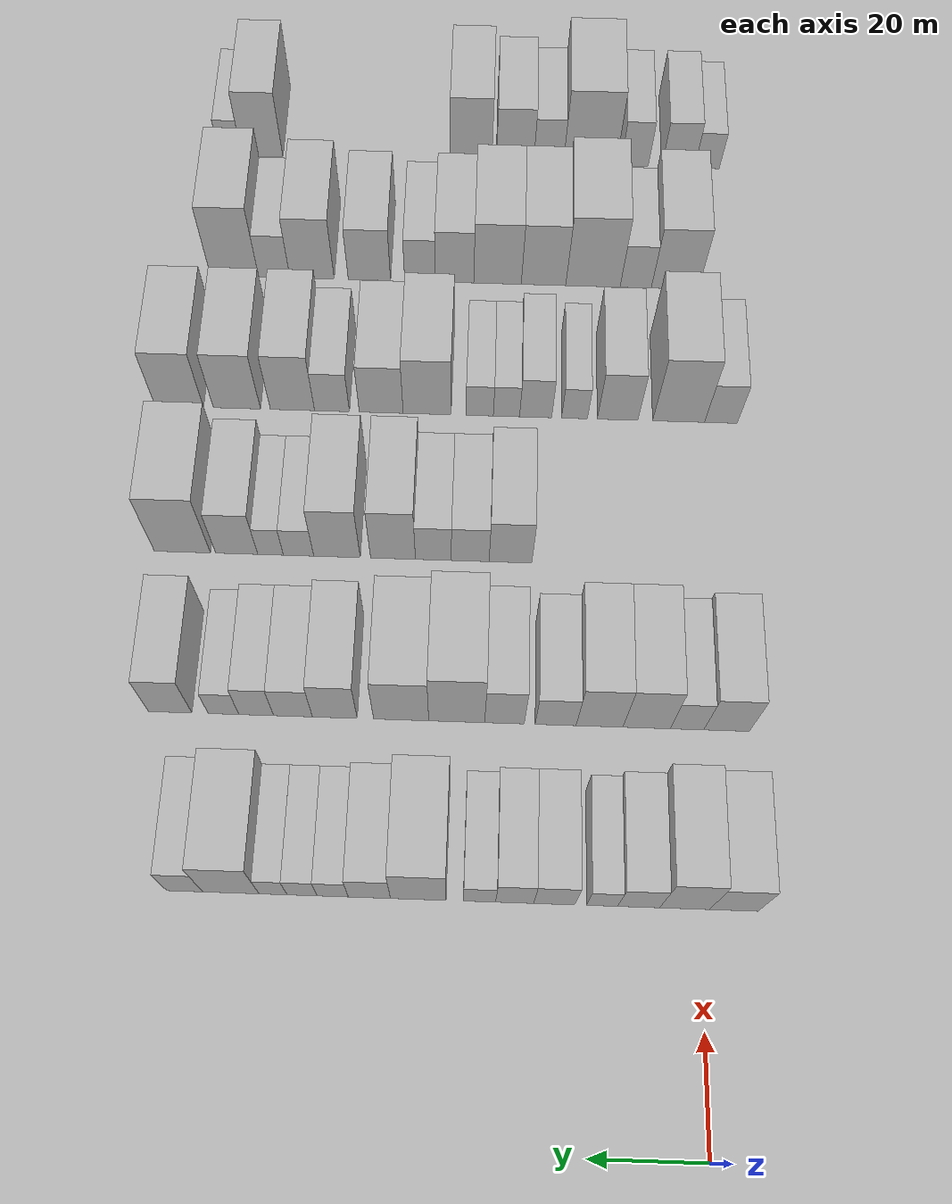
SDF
<sdf version="1.6">
 <world name="default">
  <include><name>ground_plane_1</name><uri>model://HANNAS_ground_plane</uri></include>
  <include>
   <name>ground_plane_2</name>
   <uri>model://HANNAS_ground_plane</uri>
   <pose>100 0 0  0 0 0</pose>
  </include>
  <model name="building_60">
   <static>1</static>
   <pose>50.0000 -5.7526 0 0.000000 0.000000 0.000000</pose>
   <link name="link">
    <pose>0 0 9.00 0 0 0</pose>
    <collision name="collision"><geometry><box><size>20.0000 8.3915 18.0000</size></box></geometry></collision>
    <visual name="visual">
     <cast_shadows>0</cast_shadows>
     <geometry><box><size>20.0000 8.3915 18.0000</size></box></geometry>
     <material>
      <script>
       <uri>model://HANNAS_wall/materials/scripts</uri>
       <uri>model://HANNAS_wall/materials/textures</uri>
       <name>vrc/HANNAS_wall</name>
      </script>
     </material>
    </visual>
   </link>
  </model>
  <model name="building_61">
   <static>1</static>
   <pose>50.0000 2.7768 0 0.000000 0.000000 0.000000</pose>
   <link name="link">
    <pose>0 0 10.50 0 0 0</pose>
    <collision name="collision"><geometry><box><size>20.0000 8.6674 21.0000</size></box></geometry></collision>
    <visual name="visual">
     <cast_shadows>0</cast_shadows>
     <geometry><box><size>20.0000 8.6674 21.0000</size></box></geometry>
     <material>
      <script>
       <uri>model://HANNAS_wall/materials/scripts</uri>
       <uri>model://HANNAS_wall/materials/textures</uri>
       <name>vrc/HANNAS_wall</name>
      </script>
     </material>
    </visual>
   </link>
  </model>
  <model name="building_62">
   <static>1</static>
   <pose>50.0000 10.7476 0 0.000000 0.000000 0.000000</pose>
   <link name="link">
    <pose>0 0 7.50 0 0 0</pose>
    <collision name="collision"><geometry><box><size>20.0000 7.2742 15.0000</size></box></geometry></collision>
    <visual name="visual">
     <cast_shadows>0</cast_shadows>
     <geometry><box><size>20.0000 7.2742 15.0000</size></box></geometry>
     <material>
      <script>
       <uri>model://HANNAS_wall/materials/scripts</uri>
       <uri>model://HANNAS_wall/materials/textures</uri>
       <name>vrc/HANNAS_wall</name>
      </script>
     </material>
    </visual>
   </link>
  </model>
  <model name="building_63">
   <static>1</static>
   <pose>50.0000 17.0722 0 0.000000 0.000000 0.000000</pose>
   <link name="link">
    <pose>0 0 6.00 0 0 0</pose>
    <collision name="collision"><geometry><box><size>20.0000 5.3750 12.0000</size></box></geometry></collision>
    <visual name="visual">
     <cast_shadows>0</cast_shadows>
     <geometry><box><size>20.0000 5.3750 12.0000</size></box></geometry>
     <material>
      <script>
       <uri>model://HANNAS_wall/materials/scripts</uri>
       <uri>model://HANNAS_wall/materials/textures</uri>
       <name>vrc/HANNAS_wall</name>
      </script>
     </material>
    </visual>
   </link>
  </model>
  <model name="building_64">
   <static>1</static>
   <pose>50.0000 25.3517 0 0.000000 0.000000 0.000000</pose>
   <link name="link">
    <pose>0 0 7.50 0 0 0</pose>
    <collision name="collision"><geometry><box><size>20.0000 7.1840 15.0000</size></box></geometry></collision>
    <visual name="visual">
     <cast_shadows>0</cast_shadows>
     <geometry><box><size>20.0000 7.1840 15.0000</size></box></geometry>
     <material>
      <script>
       <uri>model://HANNAS_wall/materials/scripts</uri>
       <uri>model://HANNAS_wall/materials/textures</uri>
       <name>vrc/HANNAS_wall</name>
      </script>
     </material>
    </visual>
   </link>
  </model>
  <model name="building_65">
   <static>1</static>
   <pose>50.0000 32.2390 0 0.000000 0.000000 0.000000</pose>
   <link name="link">
    <pose>0 0 7.50 0 0 0</pose>
    <collision name="collision"><geometry><box><size>20.0000 6.5907 15.0000</size></box></geometry></collision>
    <visual name="visual">
     <cast_shadows>0</cast_shadows>
     <geometry><box><size>20.0000 6.5907 15.0000</size></box></geometry>
     <material>
      <script>
       <uri>model://HANNAS_wall/materials/scripts</uri>
       <uri>model://HANNAS_wall/materials/textures</uri>
       <name>vrc/HANNAS_wall</name>
      </script>
     </material>
    </visual>
   </link>
  </model>
  <model name="building_66">
   <static>1</static>
   <pose>50.0000 38.3347 0 0.000000 0.000000 0.000000</pose>
   <link name="link">
    <pose>0 0 6.00 0 0 0</pose>
    <collision name="collision"><geometry><box><size>20.0000 5.6006 12.0000</size></box></geometry></collision>
    <visual name="visual">
     <cast_shadows>0</cast_shadows>
     <geometry><box><size>20.0000 5.6006 12.0000</size></box></geometry>
     <material>
      <script>
       <uri>model://HANNAS_wall/materials/scripts</uri>
       <uri>model://HANNAS_wall/materials/textures</uri>
       <name>vrc/HANNAS_wall</name>
      </script>
     </material>
    </visual>
   </link>
  </model>
  <model name="building_67">
   <static>1</static>
   <pose>50.0000 48.9558 0 0.000000 0.000000 0.000000</pose>
   <link name="link">
    <pose>0 0 10.50 0 0 0</pose>
    <collision name="collision"><geometry><box><size>20.0000 9.6417 21.0000</size></box></geometry></collision>
    <visual name="visual">
     <cast_shadows>0</cast_shadows>
     <geometry><box><size>20.0000 9.6417 21.0000</size></box></geometry>
     <material>
      <script>
       <uri>model://HANNAS_wall/materials/scripts</uri>
       <uri>model://HANNAS_wall/materials/textures</uri>
       <name>vrc/HANNAS_wall</name>
      </script>
     </material>
    </visual>
   </link>
  </model>
  <model name="building_68">
   <static>1</static>
   <pose>50.0000 57.4464 0 0.000000 0.000000 0.000000</pose>
   <link name="link">
    <pose>0 0 7.50 0 0 0</pose>
    <collision name="collision"><geometry><box><size>20.0000 7.3395 15.0000</size></box></geometry></collision>
    <visual name="visual">
     <cast_shadows>0</cast_shadows>
     <geometry><box><size>20.0000 7.3395 15.0000</size></box></geometry>
     <material>
      <script>
       <uri>model://HANNAS_wall/materials/scripts</uri>
       <uri>model://HANNAS_wall/materials/textures</uri>
       <name>vrc/HANNAS_wall</name>
      </script>
     </material>
    </visual>
   </link>
  </model>
  <model name="building_69">
   <static>1</static>
   <pose>50.0000 63.8387 0 0.000000 0.000000 0.000000</pose>
   <link name="link">
    <pose>0 0 6.00 0 0 0</pose>
    <collision name="collision"><geometry><box><size>20.0000 5.4452 12.0000</size></box></geometry></collision>
    <visual name="visual">
     <cast_shadows>0</cast_shadows>
     <geometry><box><size>20.0000 5.4452 12.0000</size></box></geometry>
     <material>
      <script>
       <uri>model://HANNAS_wall/materials/scripts</uri>
       <uri>model://HANNAS_wall/materials/textures</uri>
       <name>vrc/HANNAS_wall</name>
      </script>
     </material>
    </visual>
   </link>
  </model>
  <model name="building_70">
   <static>1</static>
   <pose>50.0000 69.1632 0 0.000000 0.000000 0.000000</pose>
   <link name="link">
    <pose>0 0 6.00 0 0 0</pose>
    <collision name="collision"><geometry><box><size>20.0000 5.2038 12.0000</size></box></geometry></collision>
    <visual name="visual">
     <cast_shadows>0</cast_shadows>
     <geometry><box><size>20.0000 5.2038 12.0000</size></box></geometry>
     <material>
      <script>
       <uri>model://HANNAS_wall/materials/scripts</uri>
       <uri>model://HANNAS_wall/materials/textures</uri>
       <name>vrc/HANNAS_wall</name>
      </script>
     </material>
    </visual>
   </link>
  </model>
  <model name="building_71">
   <static>1</static>
   <pose>50.0000 74.2034 0 0.000000 0.000000 0.000000</pose>
   <link name="link">
    <pose>0 0 6.00 0 0 0</pose>
    <collision name="collision"><geometry><box><size>20.0000 4.8765 12.0000</size></box></geometry></collision>
    <visual name="visual">
     <cast_shadows>0</cast_shadows>
     <geometry><box><size>20.0000 4.8765 12.0000</size></box></geometry>
     <material>
      <script>
       <uri>model://HANNAS_wall/materials/scripts</uri>
       <uri>model://HANNAS_wall/materials/textures</uri>
       <name>vrc/HANNAS_wall</name>
      </script>
     </material>
    </visual>
   </link>
  </model>
  <model name="building_72">
   <static>1</static>
   <pose>50.0000 81.5689 0 0.000000 0.000000 0.000000</pose>
   <link name="link">
    <pose>0 0 10.50 0 0 0</pose>
    <collision name="collision"><geometry><box><size>20.0000 9.8546 21.0000</size></box></geometry></collision>
    <visual name="visual">
     <cast_shadows>0</cast_shadows>
     <geometry><box><size>20.0000 9.8546 21.0000</size></box></geometry>
     <material>
      <script>
       <uri>model://HANNAS_wall/materials/scripts</uri>
       <uri>model://HANNAS_wall/materials/textures</uri>
       <name>vrc/HANNAS_wall</name>
      </script>
     </material>
    </visual>
   </link>
  </model>
  <model name="building_73">
   <static>1</static>
   <pose>50.0000 89.6382 0 0.000000 0.000000 0.000000</pose>
   <link name="link">
    <pose>0 0 7.50 0 0 0</pose>
    <collision name="collision"><geometry><box><size>20.0000 6.2839 15.0000</size></box></geometry></collision>
    <visual name="visual">
     <cast_shadows>0</cast_shadows>
     <geometry><box><size>20.0000 6.2839 15.0000</size></box></geometry>
     <material>
      <script>
       <uri>model://HANNAS_wall/materials/scripts</uri>
       <uri>model://HANNAS_wall/materials/textures</uri>
       <name>vrc/HANNAS_wall</name>
      </script>
     </material>
    </visual>
   </link>
  </model>
  <model name="building_179">
   <static>1</static>
   <pose>82.0000 -6.0456 0 0.000000 0.000000 0.000000</pose>
   <link name="link">
    <pose>0 0 9.00 0 0 0</pose>
    <collision name="collision"><geometry><box><size>20.0000 8.3194 18.0000</size></box></geometry></collision>
    <visual name="visual">
     <cast_shadows>0</cast_shadows>
     <geometry><box><size>20.0000 8.3194 18.0000</size></box></geometry>
     <material>
      <script>
       <uri>model://HANNAS_wall/materials/scripts</uri>
       <uri>model://HANNAS_wall/materials/textures</uri>
       <name>vrc/HANNAS_wall</name>
      </script>
     </material>
    </visual>
   </link>
  </model>
  <model name="building_180">
   <static>1</static>
   <pose>82.0000 1.1672 0 0.000000 0.000000 0.000000</pose>
   <link name="link">
    <pose>0 0 7.50 0 0 0</pose>
    <collision name="collision"><geometry><box><size>20.0000 6.1062 15.0000</size></box></geometry></collision>
    <visual name="visual">
     <cast_shadows>0</cast_shadows>
     <geometry><box><size>20.0000 6.1062 15.0000</size></box></geometry>
     <material>
      <script>
       <uri>model://HANNAS_wall/materials/scripts</uri>
       <uri>model://HANNAS_wall/materials/textures</uri>
       <name>vrc/HANNAS_wall</name>
      </script>
     </material>
    </visual>
   </link>
  </model>
  <model name="building_181">
   <static>1</static>
   <pose>82.0000 8.5556 0 0.000000 0.000000 0.000000</pose>
   <link name="link">
    <pose>0 0 10.50 0 0 0</pose>
    <collision name="collision"><geometry><box><size>20.0000 8.6706 21.0000</size></box></geometry></collision>
    <visual name="visual">
     <cast_shadows>0</cast_shadows>
     <geometry><box><size>20.0000 8.6706 21.0000</size></box></geometry>
     <material>
      <script>
       <uri>model://HANNAS_wall/materials/scripts</uri>
       <uri>model://HANNAS_wall/materials/textures</uri>
       <name>vrc/HANNAS_wall</name>
      </script>
     </material>
    </visual>
   </link>
  </model>
  <model name="building_182">
   <static>1</static>
   <pose>82.0000 17.1763 0 0.000000 0.000000 0.000000</pose>
   <link name="link">
    <pose>0 0 10.50 0 0 0</pose>
    <collision name="collision"><geometry><box><size>20.0000 8.5709 21.0000</size></box></geometry></collision>
    <visual name="visual">
     <cast_shadows>0</cast_shadows>
     <geometry><box><size>20.0000 8.5709 21.0000</size></box></geometry>
     <material>
      <script>
       <uri>model://HANNAS_wall/materials/scripts</uri>
       <uri>model://HANNAS_wall/materials/textures</uri>
       <name>vrc/HANNAS_wall</name>
      </script>
     </material>
    </visual>
   </link>
  </model>
  <model name="building_183">
   <static>1</static>
   <pose>82.0000 25.2046 0 0.000000 0.000000 0.000000</pose>
   <link name="link">
    <pose>0 0 7.50 0 0 0</pose>
    <collision name="collision"><geometry><box><size>20.0000 7.4856 15.0000</size></box></geometry></collision>
    <visual name="visual">
     <cast_shadows>0</cast_shadows>
     <geometry><box><size>20.0000 7.4856 15.0000</size></box></geometry>
     <material>
      <script>
       <uri>model://HANNAS_wall/materials/scripts</uri>
       <uri>model://HANNAS_wall/materials/textures</uri>
       <name>vrc/HANNAS_wall</name>
      </script>
     </material>
    </visual>
   </link>
  </model>
  <model name="building_184">
   <static>1</static>
   <pose>82.0000 34.5823 0 0.000000 0.000000 0.000000</pose>
   <link name="link">
    <pose>0 0 9.00 0 0 0</pose>
    <collision name="collision"><geometry><box><size>20.0000 7.2697 18.0000</size></box></geometry></collision>
    <visual name="visual">
     <cast_shadows>0</cast_shadows>
     <geometry><box><size>20.0000 7.2697 18.0000</size></box></geometry>
     <material>
      <script>
       <uri>model://HANNAS_wall/materials/scripts</uri>
       <uri>model://HANNAS_wall/materials/textures</uri>
       <name>vrc/HANNAS_wall</name>
      </script>
     </material>
    </visual>
   </link>
  </model>
  <model name="building_185">
   <static>1</static>
   <pose>82.0000 43.3344 0 0.000000 0.000000 0.000000</pose>
   <link name="link">
    <pose>0 0 12.00 0 0 0</pose>
    <collision name="collision"><geometry><box><size>20.0000 10.2344 24.0000</size></box></geometry></collision>
    <visual name="visual">
     <cast_shadows>0</cast_shadows>
     <geometry><box><size>20.0000 10.2344 24.0000</size></box></geometry>
     <material>
      <script>
       <uri>model://HANNAS_wall/materials/scripts</uri>
       <uri>model://HANNAS_wall/materials/textures</uri>
       <name>vrc/HANNAS_wall</name>
      </script>
     </material>
    </visual>
   </link>
  </model>
  <model name="building_186">
   <static>1</static>
   <pose>82.0000 53.5093 0 0.000000 0.000000 0.000000</pose>
   <link name="link">
    <pose>0 0 10.50 0 0 0</pose>
    <collision name="collision"><geometry><box><size>20.0000 10.1156 21.0000</size></box></geometry></collision>
    <visual name="visual">
     <cast_shadows>0</cast_shadows>
     <geometry><box><size>20.0000 10.1156 21.0000</size></box></geometry>
     <material>
      <script>
       <uri>model://HANNAS_wall/materials/scripts</uri>
       <uri>model://HANNAS_wall/materials/textures</uri>
       <name>vrc/HANNAS_wall</name>
      </script>
     </material>
    </visual>
   </link>
  </model>
  <model name="building_187">
   <static>1</static>
   <pose>82.0000 65.6841 0 0.000000 0.000000 0.000000</pose>
   <link name="link">
    <pose>0 0 9.00 0 0 0</pose>
    <collision name="collision"><geometry><box><size>20.0000 8.2340 18.0000</size></box></geometry></collision>
    <visual name="visual">
     <cast_shadows>0</cast_shadows>
     <geometry><box><size>20.0000 8.2340 18.0000</size></box></geometry>
     <material>
      <script>
       <uri>model://HANNAS_wall/materials/scripts</uri>
       <uri>model://HANNAS_wall/materials/textures</uri>
       <name>vrc/HANNAS_wall</name>
      </script>
     </material>
    </visual>
   </link>
  </model>
  <model name="building_188">
   <static>1</static>
   <pose>82.0000 73.3707 0 0.000000 0.000000 0.000000</pose>
   <link name="link">
    <pose>0 0 7.50 0 0 0</pose>
    <collision name="collision"><geometry><box><size>20.0000 7.1391 15.0000</size></box></geometry></collision>
    <visual name="visual">
     <cast_shadows>0</cast_shadows>
     <geometry><box><size>20.0000 7.1391 15.0000</size></box></geometry>
     <material>
      <script>
       <uri>model://HANNAS_wall/materials/scripts</uri>
       <uri>model://HANNAS_wall/materials/textures</uri>
       <name>vrc/HANNAS_wall</name>
      </script>
     </material>
    </visual>
   </link>
  </model>
  <model name="building_189">
   <static>1</static>
   <pose>82.0000 80.1322 0 0.000000 0.000000 0.000000</pose>
   <link name="link">
    <pose>0 0 7.50 0 0 0</pose>
    <collision name="collision"><geometry><box><size>20.0000 6.3840 15.0000</size></box></geometry></collision>
    <visual name="visual">
     <cast_shadows>0</cast_shadows>
     <geometry><box><size>20.0000 6.3840 15.0000</size></box></geometry>
     <material>
      <script>
       <uri>model://HANNAS_wall/materials/scripts</uri>
       <uri>model://HANNAS_wall/materials/textures</uri>
       <name>vrc/HANNAS_wall</name>
      </script>
     </material>
    </visual>
   </link>
  </model>
  <model name="building_190">
   <static>1</static>
   <pose>82.0000 86.1538 0 0.000000 0.000000 0.000000</pose>
   <link name="link">
    <pose>0 0 6.00 0 0 0</pose>
    <collision name="collision"><geometry><box><size>20.0000 5.6592 12.0000</size></box></geometry></collision>
    <visual name="visual">
     <cast_shadows>0</cast_shadows>
     <geometry><box><size>20.0000 5.6592 12.0000</size></box></geometry>
     <material>
      <script>
       <uri>model://HANNAS_wall/materials/scripts</uri>
       <uri>model://HANNAS_wall/materials/textures</uri>
       <name>vrc/HANNAS_wall</name>
      </script>
     </material>
    </visual>
   </link>
  </model>
  <model name="building_191">
   <static>1</static>
   <pose>82.0000 95.9830 0 0.000000 0.000000 0.000000</pose>
   <link name="link">
    <pose>0 0 9.00 0 0 0</pose>
    <collision name="collision"><geometry><box><size>20.0000 7.9992 18.0000</size></box></geometry></collision>
    <visual name="visual">
     <cast_shadows>0</cast_shadows>
     <geometry><box><size>20.0000 7.9992 18.0000</size></box></geometry>
     <material>
      <script>
       <uri>model://HANNAS_wall/materials/scripts</uri>
       <uri>model://HANNAS_wall/materials/textures</uri>
       <name>vrc/HANNAS_wall</name>
      </script>
     </material>
    </visual>
   </link>
  </model>
  <model name="building_294">
   <static>1</static>
   <pose>114.0000 34.0008 0 0.000000 0.000000 0.000000</pose>
   <link name="link">
    <pose>0 0 9.00 0 0 0</pose>
    <collision name="collision"><geometry><box><size>20.0000 8.2358 18.0000</size></box></geometry></collision>
    <visual name="visual">
     <cast_shadows>0</cast_shadows>
     <geometry><box><size>20.0000 8.2358 18.0000</size></box></geometry>
     <material>
      <script>
       <uri>model://HANNAS_wall/materials/scripts</uri>
       <uri>model://HANNAS_wall/materials/textures</uri>
       <name>vrc/HANNAS_wall</name>
      </script>
     </material>
    </visual>
   </link>
  </model>
  <model name="building_295">
   <static>1</static>
   <pose>114.0000 41.7479 0 0.000000 0.000000 0.000000</pose>
   <link name="link">
    <pose>0 0 7.50 0 0 0</pose>
    <collision name="collision"><geometry><box><size>20.0000 7.2583 15.0000</size></box></geometry></collision>
    <visual name="visual">
     <cast_shadows>0</cast_shadows>
     <geometry><box><size>20.0000 7.2583 15.0000</size></box></geometry>
     <material>
      <script>
       <uri>model://HANNAS_wall/materials/scripts</uri>
       <uri>model://HANNAS_wall/materials/textures</uri>
       <name>vrc/HANNAS_wall</name>
      </script>
     </material>
    </visual>
   </link>
  </model>
  <model name="building_296">
   <static>1</static>
   <pose>114.0000 48.8464 0 0.000000 0.000000 0.000000</pose>
   <link name="link">
    <pose>0 0 7.50 0 0 0</pose>
    <collision name="collision"><geometry><box><size>20.0000 6.9389 15.0000</size></box></geometry></collision>
    <visual name="visual">
     <cast_shadows>0</cast_shadows>
     <geometry><box><size>20.0000 6.9389 15.0000</size></box></geometry>
     <material>
      <script>
       <uri>model://HANNAS_wall/materials/scripts</uri>
       <uri>model://HANNAS_wall/materials/textures</uri>
       <name>vrc/HANNAS_wall</name>
      </script>
     </material>
    </visual>
   </link>
  </model>
  <model name="building_297">
   <static>1</static>
   <pose>114.0000 56.6478 0 0.000000 0.000000 0.000000</pose>
   <link name="link">
    <pose>0 0 10.50 0 0 0</pose>
    <collision name="collision"><geometry><box><size>20.0000 8.6639 21.0000</size></box></geometry></collision>
    <visual name="visual">
     <cast_shadows>0</cast_shadows>
     <geometry><box><size>20.0000 8.6639 21.0000</size></box></geometry>
     <material>
      <script>
       <uri>model://HANNAS_wall/materials/scripts</uri>
       <uri>model://HANNAS_wall/materials/textures</uri>
       <name>vrc/HANNAS_wall</name>
      </script>
     </material>
    </visual>
   </link>
  </model>
  <model name="building_298">
   <static>1</static>
   <pose>114.0000 67.4749 0 0.000000 0.000000 0.000000</pose>
   <link name="link">
    <pose>0 0 10.50 0 0 0</pose>
    <collision name="collision"><geometry><box><size>20.0000 8.9902 21.0000</size></box></geometry></collision>
    <visual name="visual">
     <cast_shadows>0</cast_shadows>
     <geometry><box><size>20.0000 8.9902 21.0000</size></box></geometry>
     <material>
      <script>
       <uri>model://HANNAS_wall/materials/scripts</uri>
       <uri>model://HANNAS_wall/materials/textures</uri>
       <name>vrc/HANNAS_wall</name>
      </script>
     </material>
    </visual>
   </link>
  </model>
  <model name="building_299">
   <static>1</static>
   <pose>114.0000 74.9051 0 0.000000 0.000000 0.000000</pose>
   <link name="link">
    <pose>0 0 6.00 0 0 0</pose>
    <collision name="collision"><geometry><box><size>20.0000 5.8703 12.0000</size></box></geometry></collision>
    <visual name="visual">
     <cast_shadows>0</cast_shadows>
     <geometry><box><size>20.0000 5.8703 12.0000</size></box></geometry>
     <material>
      <script>
       <uri>model://HANNAS_wall/materials/scripts</uri>
       <uri>model://HANNAS_wall/materials/textures</uri>
       <name>vrc/HANNAS_wall</name>
      </script>
     </material>
    </visual>
   </link>
  </model>
  <model name="building_300">
   <static>1</static>
   <pose>114.0000 80.3320 0 0.000000 0.000000 0.000000</pose>
   <link name="link">
    <pose>0 0 6.00 0 0 0</pose>
    <collision name="collision"><geometry><box><size>20.0000 4.9835 12.0000</size></box></geometry></collision>
    <visual name="visual">
     <cast_shadows>0</cast_shadows>
     <geometry><box><size>20.0000 4.9835 12.0000</size></box></geometry>
     <material>
      <script>
       <uri>model://HANNAS_wall/materials/scripts</uri>
       <uri>model://HANNAS_wall/materials/textures</uri>
       <name>vrc/HANNAS_wall</name>
      </script>
     </material>
    </visual>
   </link>
  </model>
  <model name="building_301">
   <static>1</static>
   <pose>114.0000 86.9029 0 0.000000 0.000000 0.000000</pose>
   <link name="link">
    <pose>0 0 9.00 0 0 0</pose>
    <collision name="collision"><geometry><box><size>20.0000 8.1582 18.0000</size></box></geometry></collision>
    <visual name="visual">
     <cast_shadows>0</cast_shadows>
     <geometry><box><size>20.0000 8.1582 18.0000</size></box></geometry>
     <material>
      <script>
       <uri>model://HANNAS_wall/materials/scripts</uri>
       <uri>model://HANNAS_wall/materials/textures</uri>
       <name>vrc/HANNAS_wall</name>
      </script>
     </material>
    </visual>
   </link>
  </model>
  <model name="building_302">
   <static>1</static>
   <pose>114.0000 97.4266 0 0.000000 0.000000 0.000000</pose>
   <link name="link">
    <pose>0 0 12.00 0 0 0</pose>
    <collision name="collision"><geometry><box><size>20.0000 10.8891 24.0000</size></box></geometry></collision>
    <visual name="visual">
     <cast_shadows>0</cast_shadows>
     <geometry><box><size>20.0000 10.8891 24.0000</size></box></geometry>
     <material>
      <script>
       <uri>model://HANNAS_wall/materials/scripts</uri>
       <uri>model://HANNAS_wall/materials/textures</uri>
       <name>vrc/HANNAS_wall</name>
      </script>
     </material>
    </visual>
   </link>
  </model>
  <model name="building_398">
   <static>1</static>
   <pose>146.0000 -8.0152 0 0.000000 0.000000 0.000000</pose>
   <link name="link">
    <pose>0 0 7.50 0 0 0</pose>
    <collision name="collision"><geometry><box><size>20.0000 6.5896 15.0000</size></box></geometry></collision>
    <visual name="visual">
     <cast_shadows>0</cast_shadows>
     <geometry><box><size>20.0000 6.5896 15.0000</size></box></geometry>
     <material>
      <script>
       <uri>model://HANNAS_wall/materials/scripts</uri>
       <uri>model://HANNAS_wall/materials/textures</uri>
       <name>vrc/HANNAS_wall</name>
      </script>
     </material>
    </visual>
   </link>
  </model>
  <model name="building_399">
   <static>1</static>
   <pose>146.0000 0.5206 0 0.000000 0.000000 0.000000</pose>
   <link name="link">
    <pose>0 0 12.00 0 0 0</pose>
    <collision name="collision"><geometry><box><size>20.0000 10.4820 24.0000</size></box></geometry></collision>
    <visual name="visual">
     <cast_shadows>0</cast_shadows>
     <geometry><box><size>20.0000 10.4820 24.0000</size></box></geometry>
     <material>
      <script>
       <uri>model://HANNAS_wall/materials/scripts</uri>
       <uri>model://HANNAS_wall/materials/textures</uri>
       <name>vrc/HANNAS_wall</name>
      </script>
     </material>
    </visual>
   </link>
  </model>
  <model name="building_400">
   <static>1</static>
   <pose>146.0000 12.8534 0 0.000000 0.000000 0.000000</pose>
   <link name="link">
    <pose>0 0 9.00 0 0 0</pose>
    <collision name="collision"><geometry><box><size>20.0000 8.1835 18.0000</size></box></geometry></collision>
    <visual name="visual">
     <cast_shadows>0</cast_shadows>
     <geometry><box><size>20.0000 8.1835 18.0000</size></box></geometry>
     <material>
      <script>
       <uri>model://HANNAS_wall/materials/scripts</uri>
       <uri>model://HANNAS_wall/materials/textures</uri>
       <name>vrc/HANNAS_wall</name>
      </script>
     </material>
    </visual>
   </link>
  </model>
  <model name="building_401">
   <static>1</static>
   <pose>146.0000 21.5603 0 0.000000 0.000000 0.000000</pose>
   <link name="link">
    <pose>0 0 6.00 0 0 0</pose>
    <collision name="collision"><geometry><box><size>20.0000 5.2304 12.0000</size></box></geometry></collision>
    <visual name="visual">
     <cast_shadows>0</cast_shadows>
     <geometry><box><size>20.0000 5.2304 12.0000</size></box></geometry>
     <material>
      <script>
       <uri>model://HANNAS_wall/materials/scripts</uri>
       <uri>model://HANNAS_wall/materials/textures</uri>
       <name>vrc/HANNAS_wall</name>
      </script>
     </material>
    </visual>
   </link>
  </model>
  <model name="building_402">
   <static>1</static>
   <pose>146.0000 29.4177 0 0.000000 0.000000 0.000000</pose>
   <link name="link">
    <pose>0 0 7.50 0 0 0</pose>
    <collision name="collision"><geometry><box><size>20.0000 6.4843 15.0000</size></box></geometry></collision>
    <visual name="visual">
     <cast_shadows>0</cast_shadows>
     <geometry><box><size>20.0000 6.4843 15.0000</size></box></geometry>
     <material>
      <script>
       <uri>model://HANNAS_wall/materials/scripts</uri>
       <uri>model://HANNAS_wall/materials/textures</uri>
       <name>vrc/HANNAS_wall</name>
      </script>
     </material>
    </visual>
   </link>
  </model>
  <model name="building_403">
   <static>1</static>
   <pose>146.0000 35.3189 0 0.000000 0.000000 0.000000</pose>
   <link name="link">
    <pose>0 0 6.00 0 0 0</pose>
    <collision name="collision"><geometry><box><size>20.0000 5.3182 12.0000</size></box></geometry></collision>
    <visual name="visual">
     <cast_shadows>0</cast_shadows>
     <geometry><box><size>20.0000 5.3182 12.0000</size></box></geometry>
     <material>
      <script>
       <uri>model://HANNAS_wall/materials/scripts</uri>
       <uri>model://HANNAS_wall/materials/textures</uri>
       <name>vrc/HANNAS_wall</name>
      </script>
     </material>
    </visual>
   </link>
  </model>
  <model name="building_404">
   <static>1</static>
   <pose>146.0000 40.7493 0 0.000000 0.000000 0.000000</pose>
   <link name="link">
    <pose>0 0 6.00 0 0 0</pose>
    <collision name="collision"><geometry><box><size>20.0000 5.5427 12.0000</size></box></geometry></collision>
    <visual name="visual">
     <cast_shadows>0</cast_shadows>
     <geometry><box><size>20.0000 5.5427 12.0000</size></box></geometry>
     <material>
      <script>
       <uri>model://HANNAS_wall/materials/scripts</uri>
       <uri>model://HANNAS_wall/materials/textures</uri>
       <name>vrc/HANNAS_wall</name>
      </script>
     </material>
    </visual>
   </link>
  </model>
  <model name="building_405">
   <static>1</static>
   <pose>146.0000 51.3825 0 0.000000 0.000000 0.000000</pose>
   <link name="link">
    <pose>0 0 10.50 0 0 0</pose>
    <collision name="collision"><geometry><box><size>20.0000 9.7236 21.0000</size></box></geometry></collision>
    <visual name="visual">
     <cast_shadows>0</cast_shadows>
     <geometry><box><size>20.0000 9.7236 21.0000</size></box></geometry>
     <material>
      <script>
       <uri>model://HANNAS_wall/materials/scripts</uri>
       <uri>model://HANNAS_wall/materials/textures</uri>
       <name>vrc/HANNAS_wall</name>
      </script>
     </material>
    </visual>
   </link>
  </model>
  <model name="building_406">
   <static>1</static>
   <pose>146.0000 60.6930 0 0.000000 0.000000 0.000000</pose>
   <link name="link">
    <pose>0 0 9.00 0 0 0</pose>
    <collision name="collision"><geometry><box><size>20.0000 8.8974 18.0000</size></box></geometry></collision>
    <visual name="visual">
     <cast_shadows>0</cast_shadows>
     <geometry><box><size>20.0000 8.8974 18.0000</size></box></geometry>
     <material>
      <script>
       <uri>model://HANNAS_wall/materials/scripts</uri>
       <uri>model://HANNAS_wall/materials/textures</uri>
       <name>vrc/HANNAS_wall</name>
      </script>
     </material>
    </visual>
   </link>
  </model>
  <model name="building_407">
   <static>1</static>
   <pose>146.0000 70.6832 0 0.000000 0.000000 0.000000</pose>
   <link name="link">
    <pose>0 0 7.50 0 0 0</pose>
    <collision name="collision"><geometry><box><size>20.0000 7.0830 15.0000</size></box></geometry></collision>
    <visual name="visual">
     <cast_shadows>0</cast_shadows>
     <geometry><box><size>20.0000 7.0830 15.0000</size></box></geometry>
     <material>
      <script>
       <uri>model://HANNAS_wall/materials/scripts</uri>
       <uri>model://HANNAS_wall/materials/textures</uri>
       <name>vrc/HANNAS_wall</name>
      </script>
     </material>
    </visual>
   </link>
  </model>
  <model name="building_408">
   <static>1</static>
   <pose>146.0000 78.7227 0 0.000000 0.000000 0.000000</pose>
   <link name="link">
    <pose>0 0 10.50 0 0 0</pose>
    <collision name="collision"><geometry><box><size>20.0000 8.9960 21.0000</size></box></geometry></collision>
    <visual name="visual">
     <cast_shadows>0</cast_shadows>
     <geometry><box><size>20.0000 8.9960 21.0000</size></box></geometry>
     <material>
      <script>
       <uri>model://HANNAS_wall/materials/scripts</uri>
       <uri>model://HANNAS_wall/materials/textures</uri>
       <name>vrc/HANNAS_wall</name>
      </script>
     </material>
    </visual>
   </link>
  </model>
  <model name="building_409">
   <static>1</static>
   <pose>146.0000 90.0213 0 0.000000 0.000000 0.000000</pose>
   <link name="link">
    <pose>0 0 10.50 0 0 0</pose>
    <collision name="collision"><geometry><box><size>20.0000 9.6012 21.0000</size></box></geometry></collision>
    <visual name="visual">
     <cast_shadows>0</cast_shadows>
     <geometry><box><size>20.0000 9.6012 21.0000</size></box></geometry>
     <material>
      <script>
       <uri>model://HANNAS_wall/materials/scripts</uri>
       <uri>model://HANNAS_wall/materials/textures</uri>
       <name>vrc/HANNAS_wall</name>
      </script>
     </material>
    </visual>
   </link>
  </model>
  <model name="building_410">
   <static>1</static>
   <pose>146.0000 101.7502 0 0.000000 0.000000 0.000000</pose>
   <link name="link">
    <pose>0 0 10.50 0 0 0</pose>
    <collision name="collision"><geometry><box><size>20.0000 9.8565 21.0000</size></box></geometry></collision>
    <visual name="visual">
     <cast_shadows>0</cast_shadows>
     <geometry><box><size>20.0000 9.8565 21.0000</size></box></geometry>
     <material>
      <script>
       <uri>model://HANNAS_wall/materials/scripts</uri>
       <uri>model://HANNAS_wall/materials/textures</uri>
       <name>vrc/HANNAS_wall</name>
      </script>
     </material>
    </visual>
   </link>
  </model>
  <model name="building_516">
   <static>1</static>
   <pose>178.0000 0.2254 0 0.000000 0.000000 0.000000</pose>
   <link name="link">
    <pose>0 0 10.50 0 0 0</pose>
    <collision name="collision"><geometry><box><size>20.0000 9.9528 21.0000</size></box></geometry></collision>
    <visual name="visual">
     <cast_shadows>0</cast_shadows>
     <geometry><box><size>20.0000 9.9528 21.0000</size></box></geometry>
     <material>
      <script>
       <uri>model://HANNAS_wall/materials/scripts</uri>
       <uri>model://HANNAS_wall/materials/textures</uri>
       <name>vrc/HANNAS_wall</name>
      </script>
     </material>
    </visual>
   </link>
  </model>
  <model name="building_517">
   <static>1</static>
   <pose>178.0000 8.4982 0 0.000000 0.000000 0.000000</pose>
   <link name="link">
    <pose>0 0 7.50 0 0 0</pose>
    <collision name="collision"><geometry><box><size>20.0000 6.5929 15.0000</size></box></geometry></collision>
    <visual name="visual">
     <cast_shadows>0</cast_shadows>
     <geometry><box><size>20.0000 6.5929 15.0000</size></box></geometry>
     <material>
      <script>
       <uri>model://HANNAS_wall/materials/scripts</uri>
       <uri>model://HANNAS_wall/materials/textures</uri>
       <name>vrc/HANNAS_wall</name>
      </script>
     </material>
    </visual>
   </link>
  </model>
  <model name="building_518">
   <static>1</static>
   <pose>178.0000 17.5535 0 0.000000 0.000000 0.000000</pose>
   <link name="link">
    <pose>0 0 12.00 0 0 0</pose>
    <collision name="collision"><geometry><box><size>20.0000 11.5177 24.0000</size></box></geometry></collision>
    <visual name="visual">
     <cast_shadows>0</cast_shadows>
     <geometry><box><size>20.0000 11.5177 24.0000</size></box></geometry>
     <material>
      <script>
       <uri>model://HANNAS_wall/materials/scripts</uri>
       <uri>model://HANNAS_wall/materials/textures</uri>
       <name>vrc/HANNAS_wall</name>
      </script>
     </material>
    </visual>
   </link>
  </model>
  <model name="building_519">
   <static>1</static>
   <pose>178.0000 28.0218 0 0.000000 0.000000 0.000000</pose>
   <link name="link">
    <pose>0 0 10.50 0 0 0</pose>
    <collision name="collision"><geometry><box><size>20.0000 9.4190 21.0000</size></box></geometry></collision>
    <visual name="visual">
     <cast_shadows>0</cast_shadows>
     <geometry><box><size>20.0000 9.4190 21.0000</size></box></geometry>
     <material>
      <script>
       <uri>model://HANNAS_wall/materials/scripts</uri>
       <uri>model://HANNAS_wall/materials/textures</uri>
       <name>vrc/HANNAS_wall</name>
      </script>
     </material>
    </visual>
   </link>
  </model>
  <model name="building_520">
   <static>1</static>
   <pose>178.0000 37.7705 0 0.000000 0.000000 0.000000</pose>
   <link name="link">
    <pose>0 0 10.50 0 0 0</pose>
    <collision name="collision"><geometry><box><size>20.0000 10.0784 21.0000</size></box></geometry></collision>
    <visual name="visual">
     <cast_shadows>0</cast_shadows>
     <geometry><box><size>20.0000 10.0784 21.0000</size></box></geometry>
     <material>
      <script>
       <uri>model://HANNAS_wall/materials/scripts</uri>
       <uri>model://HANNAS_wall/materials/textures</uri>
       <name>vrc/HANNAS_wall</name>
      </script>
     </material>
    </visual>
   </link>
  </model>
  <model name="building_521">
   <static>1</static>
   <pose>178.0000 46.8859 0 0.000000 0.000000 0.000000</pose>
   <link name="link">
    <pose>0 0 9.00 0 0 0</pose>
    <collision name="collision"><geometry><box><size>20.0000 8.1523 18.0000</size></box></geometry></collision>
    <visual name="visual">
     <cast_shadows>0</cast_shadows>
     <geometry><box><size>20.0000 8.1523 18.0000</size></box></geometry>
     <material>
      <script>
       <uri>model://HANNAS_wall/materials/scripts</uri>
       <uri>model://HANNAS_wall/materials/textures</uri>
       <name>vrc/HANNAS_wall</name>
      </script>
     </material>
    </visual>
   </link>
  </model>
  <model name="building_522">
   <static>1</static>
   <pose>178.0000 54.2145 0 0.000000 0.000000 0.000000</pose>
   <link name="link">
    <pose>0 0 7.50 0 0 0</pose>
    <collision name="collision"><geometry><box><size>20.0000 6.5049 15.0000</size></box></geometry></collision>
    <visual name="visual">
     <cast_shadows>0</cast_shadows>
     <geometry><box><size>20.0000 6.5049 15.0000</size></box></geometry>
     <material>
      <script>
       <uri>model://HANNAS_wall/materials/scripts</uri>
       <uri>model://HANNAS_wall/materials/textures</uri>
       <name>vrc/HANNAS_wall</name>
      </script>
     </material>
    </visual>
   </link>
  </model>
  <model name="building_523">
   <static>1</static>
   <pose>178.0000 64.9645 0 0.000000 0.000000 0.000000</pose>
   <link name="link">
    <pose>0 0 9.00 0 0 0</pose>
    <collision name="collision"><geometry><box><size>20.0000 8.9949 18.0000</size></box></geometry></collision>
    <visual name="visual">
     <cast_shadows>0</cast_shadows>
     <geometry><box><size>20.0000 8.9949 18.0000</size></box></geometry>
     <material>
      <script>
       <uri>model://HANNAS_wall/materials/scripts</uri>
       <uri>model://HANNAS_wall/materials/textures</uri>
       <name>vrc/HANNAS_wall</name>
      </script>
     </material>
    </visual>
   </link>
  </model>
  <model name="building_524">
   <static>1</static>
   <pose>178.0000 77.1707 0 0.000000 0.000000 0.000000</pose>
   <link name="link">
    <pose>0 0 10.50 0 0 0</pose>
    <collision name="collision"><geometry><box><size>20.0000 9.4175 21.0000</size></box></geometry></collision>
    <visual name="visual">
     <cast_shadows>0</cast_shadows>
     <geometry><box><size>20.0000 9.4175 21.0000</size></box></geometry>
     <material>
      <script>
       <uri>model://HANNAS_wall/materials/scripts</uri>
       <uri>model://HANNAS_wall/materials/textures</uri>
       <name>vrc/HANNAS_wall</name>
      </script>
     </material>
    </visual>
   </link>
  </model>
  <model name="building_525">
   <static>1</static>
   <pose>178.0000 85.2183 0 0.000000 0.000000 0.000000</pose>
   <link name="link">
    <pose>0 0 7.50 0 0 0</pose>
    <collision name="collision"><geometry><box><size>20.0000 6.6776 15.0000</size></box></geometry></collision>
    <visual name="visual">
     <cast_shadows>0</cast_shadows>
     <geometry><box><size>20.0000 6.6776 15.0000</size></box></geometry>
     <material>
      <script>
       <uri>model://HANNAS_wall/materials/scripts</uri>
       <uri>model://HANNAS_wall/materials/textures</uri>
       <name>vrc/HANNAS_wall</name>
      </script>
     </material>
    </visual>
   </link>
  </model>
  <model name="building_526">
   <static>1</static>
   <pose>178.0000 93.6958 0 0.000000 0.000000 0.000000</pose>
   <link name="link">
    <pose>0 0 12.00 0 0 0</pose>
    <collision name="collision"><geometry><box><size>20.0000 10.2774 24.0000</size></box></geometry></collision>
    <visual name="visual">
     <cast_shadows>0</cast_shadows>
     <geometry><box><size>20.0000 10.2774 24.0000</size></box></geometry>
     <material>
      <script>
       <uri>model://HANNAS_wall/materials/scripts</uri>
       <uri>model://HANNAS_wall/materials/textures</uri>
       <name>vrc/HANNAS_wall</name>
      </script>
     </material>
    </visual>
   </link>
  </model>
  <model name="building_628">
   <static>1</static>
   <pose>210.0000 -7.9167 0 0.000000 0.000000 0.000000</pose>
   <link name="link">
    <pose>0 0 6.00 0 0 0</pose>
    <collision name="collision"><geometry><box><size>20.0000 5.5072 12.0000</size></box></geometry></collision>
    <visual name="visual">
     <cast_shadows>0</cast_shadows>
     <geometry><box><size>20.0000 5.5072 12.0000</size></box></geometry>
     <material>
      <script>
       <uri>model://HANNAS_wall/materials/scripts</uri>
       <uri>model://HANNAS_wall/materials/textures</uri>
       <name>vrc/HANNAS_wall</name>
      </script>
     </material>
    </visual>
   </link>
  </model>
  <model name="building_629">
   <static>1</static>
   <pose>210.0000 -1.5497 0 0.000000 0.000000 0.000000</pose>
   <link name="link">
    <pose>0 0 7.50 0 0 0</pose>
    <collision name="collision"><geometry><box><size>20.0000 7.2267 15.0000</size></box></geometry></collision>
    <visual name="visual">
     <cast_shadows>0</cast_shadows>
     <geometry><box><size>20.0000 7.2267 15.0000</size></box></geometry>
     <material>
      <script>
       <uri>model://HANNAS_wall/materials/scripts</uri>
       <uri>model://HANNAS_wall/materials/textures</uri>
       <name>vrc/HANNAS_wall</name>
      </script>
     </material>
    </visual>
   </link>
  </model>
  <model name="building_630">
   <static>1</static>
   <pose>210.0000 8.0995 0 0.000000 0.000000 0.000000</pose>
   <link name="link">
    <pose>0 0 7.50 0 0 0</pose>
    <collision name="collision"><geometry><box><size>20.0000 6.0717 15.0000</size></box></geometry></collision>
    <visual name="visual">
     <cast_shadows>0</cast_shadows>
     <geometry><box><size>20.0000 6.0717 15.0000</size></box></geometry>
     <material>
      <script>
       <uri>model://HANNAS_wall/materials/scripts</uri>
       <uri>model://HANNAS_wall/materials/textures</uri>
       <name>vrc/HANNAS_wall</name>
      </script>
     </material>
    </visual>
   </link>
  </model>
  <model name="building_631">
   <static>1</static>
   <pose>210.0000 17.9775 0 0.000000 0.000000 0.000000</pose>
   <link name="link">
    <pose>0 0 12.00 0 0 0</pose>
    <collision name="collision"><geometry><box><size>20.0000 11.6843 24.0000</size></box></geometry></collision>
    <visual name="visual">
     <cast_shadows>0</cast_shadows>
     <geometry><box><size>20.0000 11.6843 24.0000</size></box></geometry>
     <material>
      <script>
       <uri>model://HANNAS_wall/materials/scripts</uri>
       <uri>model://HANNAS_wall/materials/textures</uri>
       <name>vrc/HANNAS_wall</name>
      </script>
     </material>
    </visual>
   </link>
  </model>
  <model name="building_632">
   <static>1</static>
   <pose>210.0000 27.1135 0 0.000000 0.000000 0.000000</pose>
   <link name="link">
    <pose>0 0 7.50 0 0 0</pose>
    <collision name="collision"><geometry><box><size>20.0000 6.5878 15.0000</size></box></geometry></collision>
    <visual name="visual">
     <cast_shadows>0</cast_shadows>
     <geometry><box><size>20.0000 6.5878 15.0000</size></box></geometry>
     <material>
      <script>
       <uri>model://HANNAS_wall/materials/scripts</uri>
       <uri>model://HANNAS_wall/materials/textures</uri>
       <name>vrc/HANNAS_wall</name>
      </script>
     </material>
    </visual>
   </link>
  </model>
  <model name="building_633">
   <static>1</static>
   <pose>210.0000 34.5466 0 0.000000 0.000000 0.000000</pose>
   <link name="link">
    <pose>0 0 9.00 0 0 0</pose>
    <collision name="collision"><geometry><box><size>20.0000 8.2782 18.0000</size></box></geometry></collision>
    <visual name="visual">
     <cast_shadows>0</cast_shadows>
     <geometry><box><size>20.0000 8.2782 18.0000</size></box></geometry>
     <material>
      <script>
       <uri>model://HANNAS_wall/materials/scripts</uri>
       <uri>model://HANNAS_wall/materials/textures</uri>
       <name>vrc/HANNAS_wall</name>
      </script>
     </material>
    </visual>
   </link>
  </model>
  <model name="building_634">
   <static>1</static>
   <pose>210.0000 44.2854 0 0.000000 0.000000 0.000000</pose>
   <link name="link">
    <pose>0 0 10.50 0 0 0</pose>
    <collision name="collision"><geometry><box><size>20.0000 9.1994 21.0000</size></box></geometry></collision>
    <visual name="visual">
     <cast_shadows>0</cast_shadows>
     <geometry><box><size>20.0000 9.1994 21.0000</size></box></geometry>
     <material>
      <script>
       <uri>model://HANNAS_wall/materials/scripts</uri>
       <uri>model://HANNAS_wall/materials/textures</uri>
       <name>vrc/HANNAS_wall</name>
      </script>
     </material>
    </visual>
   </link>
  </model>
  <model name="building_635">
   <static>1</static>
   <pose>210.0000 90.6897 0 0.000000 0.000000 0.000000</pose>
   <link name="link">
    <pose>0 0 10.50 0 0 0</pose>
    <collision name="collision"><geometry><box><size>20.0000 9.2031 21.0000</size></box></geometry></collision>
    <visual name="visual">
     <cast_shadows>0</cast_shadows>
     <geometry><box><size>20.0000 9.2031 21.0000</size></box></geometry>
     <material>
      <script>
       <uri>model://HANNAS_wall/materials/scripts</uri>
       <uri>model://HANNAS_wall/materials/textures</uri>
       <name>vrc/HANNAS_wall</name>
      </script>
     </material>
    </visual>
   </link>
  </model>
  <model name="building_636">
   <static>1</static>
   <pose>210.0000 97.7976 0 0.000000 0.000000 0.000000</pose>
   <link name="link">
    <pose>0 0 6.00 0 0 0</pose>
    <collision name="collision"><geometry><box><size>20.0000 5.0126 12.0000</size></box></geometry></collision>
    <visual name="visual">
     <cast_shadows>0</cast_shadows>
     <geometry><box><size>20.0000 5.0126 12.0000</size></box></geometry>
     <material>
      <script>
       <uri>model://HANNAS_wall/materials/scripts</uri>
       <uri>model://HANNAS_wall/materials/textures</uri>
       <name>vrc/HANNAS_wall</name>
      </script>
     </material>
    </visual>
   </link>
  </model>
 </world>
</sdf>
